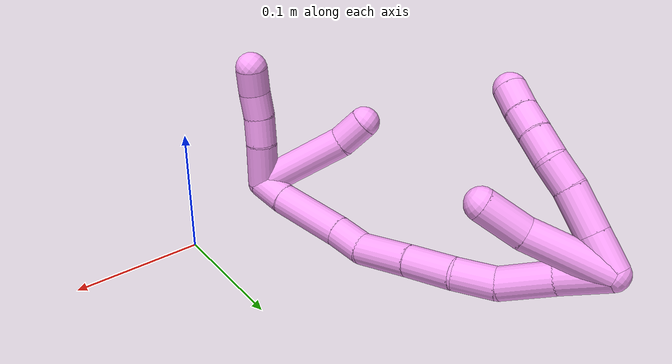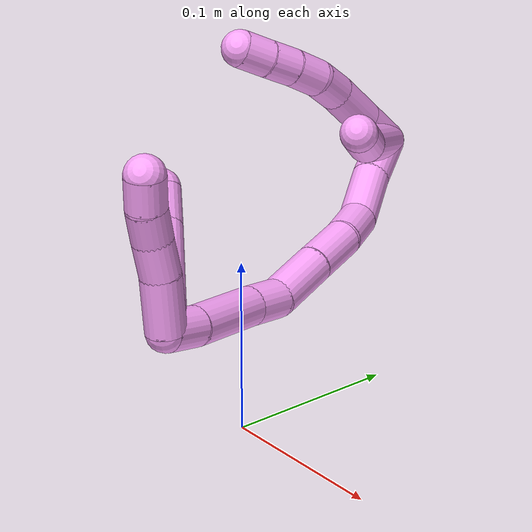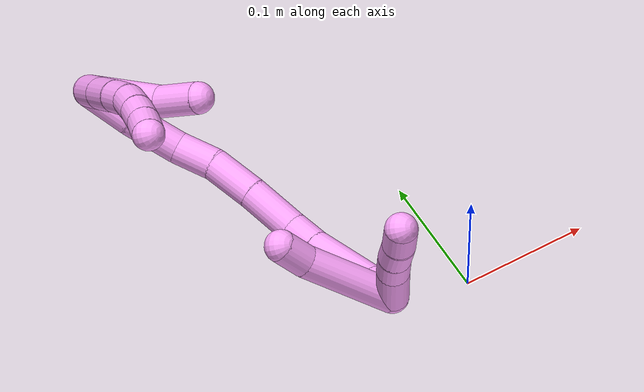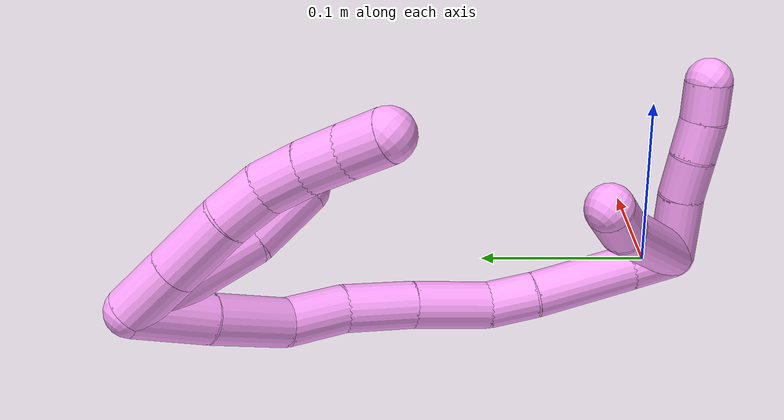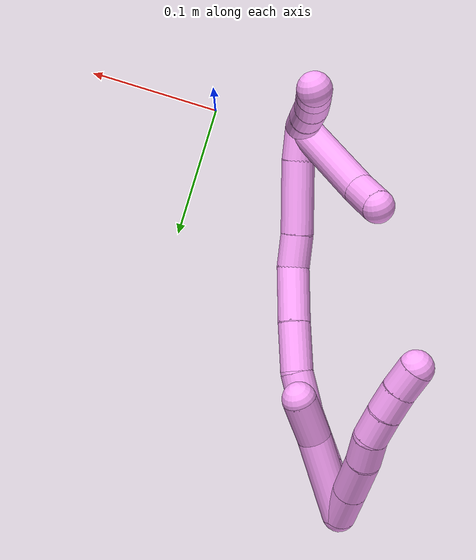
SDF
<sdf version="1.7">
 <world name="default">
  <model name="4">
   <static>0</static>
   <link name="4">
    <collision name="collision-cylinder-e_1_2_8">
     <pose>0.005454 -0.005043 -0.012886 2.76856 0.375442 1.5774</pose>
     <geometry><cylinder><radius>0.0125</radius><length>0.029748</length></cylinder></geometry>
     <surface>
      <friction><ode><mu>1.16</mu><mu2>1.16</mu2><slip1>0</slip1><slip2>0</slip2></ode></friction>
      <contact><ode><kp>1e+06</kp><kd>1</kd><max_vel>0</max_vel><min_depth>0.001</min_depth></ode></contact>
     </surface>
    </collision>
    <visual name="visual-cylinder-e_1_2_8">
     <pose>0.005454 -0.005043 -0.012886 2.76856 0.375442 1.5774</pose>
     <geometry><cylinder><radius>0.0125</radius><length>0.029748</length></cylinder></geometry>
     <material><ambient>1 0.65098 0.996078 1</ambient></material>
    </visual>
    <collision name="collision-cylinder-e_2_8_9">
     <pose>0.017181 -0.015887 -0.0408 2.77322 0.371372 1.57908</pose>
     <geometry><cylinder><radius>0.0125</radius><length>0.034573</length></cylinder></geometry>
     <surface>
      <friction><ode><mu>1.16</mu><mu2>1.16</mu2><slip1>0</slip1><slip2>0</slip2></ode></friction>
      <contact><ode><kp>1e+06</kp><kd>1</kd><max_vel>0</max_vel><min_depth>0.001</min_depth></ode></contact>
     </surface>
    </collision>
    <visual name="visual-cylinder-e_2_8_9">
     <pose>0.017181 -0.015887 -0.0408 2.77322 0.371372 1.57908</pose>
     <geometry><cylinder><radius>0.0125</radius><length>0.034573</length></cylinder></geometry>
     <material><ambient>1 0.65098 0.996078 1</ambient></material>
    </visual>
    <collision name="collision-cylinder-e_3_9_10">
     <pose>0.026215 -0.025762 -0.066169 2.76624 0.243426 1.1444</pose>
     <geometry><cylinder><radius>0.0125</radius><length>0.022905</length></cylinder></geometry>
     <surface>
      <friction><ode><mu>1.16</mu><mu2>1.16</mu2><slip1>0</slip1><slip2>0</slip2></ode></friction>
      <contact><ode><kp>1e+06</kp><kd>1</kd><max_vel>0</max_vel><min_depth>0.001</min_depth></ode></contact>
     </surface>
    </collision>
    <visual name="visual-cylinder-e_3_9_10">
     <pose>0.026215 -0.025762 -0.066169 2.76624 0.243426 1.1444</pose>
     <geometry><cylinder><radius>0.0125</radius><length>0.022905</length></cylinder></geometry>
     <material><ambient>1 0.65098 0.996078 1</ambient></material>
    </visual>
    <collision name="collision-cylinder-e_4_10_11">
     <pose>0.031856 -0.036256 -0.084937 2.49062 0.265475 0.753471</pose>
     <geometry><cylinder><radius>0.0125</radius><length>0.021957</length></cylinder></geometry>
     <surface>
      <friction><ode><mu>1.16</mu><mu2>1.16</mu2><slip1>0</slip1><slip2>0</slip2></ode></friction>
      <contact><ode><kp>1e+06</kp><kd>1</kd><max_vel>0</max_vel><min_depth>0.001</min_depth></ode></contact>
     </surface>
    </collision>
    <visual name="visual-cylinder-e_4_10_11">
     <pose>0.031856 -0.036256 -0.084937 2.49062 0.265475 0.753471</pose>
     <geometry><cylinder><radius>0.0125</radius><length>0.021957</length></cylinder></geometry>
     <material><ambient>1 0.65098 0.996078 1</ambient></material>
    </visual>
    <collision name="collision-cylinder-e_5_11_12">
     <pose>0.037274 -0.049311 -0.100674 2.4045 0.251673 0.633111</pose>
     <geometry><cylinder><radius>0.0125</radius><length>0.020385</length></cylinder></geometry>
     <surface>
      <friction><ode><mu>1.16</mu><mu2>1.16</mu2><slip1>0</slip1><slip2>0</slip2></ode></friction>
      <contact><ode><kp>1e+06</kp><kd>1</kd><max_vel>0</max_vel><min_depth>0.001</min_depth></ode></contact>
     </surface>
    </collision>
    <visual name="visual-cylinder-e_5_11_12">
     <pose>0.037274 -0.049311 -0.100674 2.4045 0.251673 0.633111</pose>
     <geometry><cylinder><radius>0.0125</radius><length>0.020385</length></cylinder></geometry>
     <material><ambient>1 0.65098 0.996078 1</ambient></material>
    </visual>
    <collision name="collision-cylinder-e_6_12_6">
     <pose>0.042908 -0.062864 -0.114833 2.3512 0.30785 0.712168</pose>
     <geometry><cylinder><radius>0.0125</radius><length>0.020431</length></cylinder></geometry>
     <surface>
      <friction><ode><mu>1.16</mu><mu2>1.16</mu2><slip1>0</slip1><slip2>0</slip2></ode></friction>
      <contact><ode><kp>1e+06</kp><kd>1</kd><max_vel>0</max_vel><min_depth>0.001</min_depth></ode></contact>
     </surface>
    </collision>
    <visual name="visual-cylinder-e_6_12_6">
     <pose>0.042908 -0.062864 -0.114833 2.3512 0.30785 0.712168</pose>
     <geometry><cylinder><radius>0.0125</radius><length>0.020431</length></cylinder></geometry>
     <material><ambient>1 0.65098 0.996078 1</ambient></material>
    </visual>
    <collision name="collision-cylinder-e_1_2_13">
     <pose>-0.009434 -0.005364 -0.030427 2.96709 -0.296364 -2.08151</pose>
     <geometry><cylinder><radius>0.0125</radius><length>0.064609</length></cylinder></geometry>
     <surface>
      <friction><ode><mu>1.16</mu><mu2>1.16</mu2><slip1>0</slip1><slip2>0</slip2></ode></friction>
      <contact><ode><kp>1e+06</kp><kd>1</kd><max_vel>0</max_vel><min_depth>0.001</min_depth></ode></contact>
     </surface>
    </collision>
    <visual name="visual-cylinder-e_1_2_13">
     <pose>-0.009434 -0.005364 -0.030427 2.96709 -0.296364 -2.08151</pose>
     <geometry><cylinder><radius>0.0125</radius><length>0.064609</length></cylinder></geometry>
     <material><ambient>1 0.65098 0.996078 1</ambient></material>
    </visual>
    <collision name="collision-cylinder-e_2_13_5">
     <pose>-0.020703 -0.011191 -0.078448 3.11526 -0.103843 -2.64523</pose>
     <geometry><cylinder><radius>0.0125</radius><length>0.035391</length></cylinder></geometry>
     <surface>
      <friction><ode><mu>1.16</mu><mu2>1.16</mu2><slip1>0</slip1><slip2>0</slip2></ode></friction>
      <contact><ode><kp>1e+06</kp><kd>1</kd><max_vel>0</max_vel><min_depth>0.001</min_depth></ode></contact>
     </surface>
    </collision>
    <visual name="visual-cylinder-e_2_13_5">
     <pose>-0.020703 -0.011191 -0.078448 3.11526 -0.103843 -2.64523</pose>
     <geometry><cylinder><radius>0.0125</radius><length>0.035391</length></cylinder></geometry>
     <material><ambient>1 0.65098 0.996078 1</ambient></material>
    </visual>
    <collision name="collision-cylinder-e_1_2_14">
     <pose>-0.014428 -0.00792 -0.009976 2.4706 -0.847564 -1.82557</pose>
     <geometry><cylinder><radius>0.0125</radius><length>0.038493</length></cylinder></geometry>
     <surface>
      <friction><ode><mu>1.16</mu><mu2>1.16</mu2><slip1>0</slip1><slip2>0</slip2></ode></friction>
      <contact><ode><kp>1e+06</kp><kd>1</kd><max_vel>0</max_vel><min_depth>0.001</min_depth></ode></contact>
     </surface>
    </collision>
    <visual name="visual-cylinder-e_1_2_14">
     <pose>-0.014428 -0.00792 -0.009976 2.4706 -0.847564 -1.82557</pose>
     <geometry><cylinder><radius>0.0125</radius><length>0.038493</length></cylinder></geometry>
     <material><ambient>1 0.65098 0.996078 1</ambient></material>
    </visual>
    <collision name="collision-cylinder-e_2_14_15">
     <pose>-0.045105 -0.02292 -0.031213 2.58029 -0.884791 -2.04828</pose>
     <geometry><cylinder><radius>0.0125</radius><length>0.041998</length></cylinder></geometry>
     <surface>
      <friction><ode><mu>1.16</mu><mu2>1.16</mu2><slip1>0</slip1><slip2>0</slip2></ode></friction>
      <contact><ode><kp>1e+06</kp><kd>1</kd><max_vel>0</max_vel><min_depth>0.001</min_depth></ode></contact>
     </surface>
    </collision>
    <visual name="visual-cylinder-e_2_14_15">
     <pose>-0.045105 -0.02292 -0.031213 2.58029 -0.884791 -2.04828</pose>
     <geometry><cylinder><radius>0.0125</radius><length>0.041998</length></cylinder></geometry>
     <material><ambient>1 0.65098 0.996078 1</ambient></material>
    </visual>
    <collision name="collision-cylinder-e_3_15_16">
     <pose>-0.06977 -0.035501 -0.054857 2.72358 -0.555801 -1.86296</pose>
     <geometry><cylinder><radius>0.0125</radius><length>0.031903</length></cylinder></geometry>
     <surface>
      <friction><ode><mu>1.16</mu><mu2>1.16</mu2><slip1>0</slip1><slip2>0</slip2></ode></friction>
      <contact><ode><kp>1e+06</kp><kd>1</kd><max_vel>0</max_vel><min_depth>0.001</min_depth></ode></contact>
     </surface>
    </collision>
    <visual name="visual-cylinder-e_3_15_16">
     <pose>-0.06977 -0.035501 -0.054857 2.72358 -0.555801 -1.86296</pose>
     <geometry><cylinder><radius>0.0125</radius><length>0.031903</length></cylinder></geometry>
     <material><ambient>1 0.65098 0.996078 1</ambient></material>
    </visual>
    <collision name="collision-cylinder-e_4_16_17">
     <pose>-0.087592 -0.051007 -0.080079 2.47956 -0.523943 -1.32514</pose>
     <geometry><cylinder><radius>0.0125</radius><length>0.037597</length></cylinder></geometry>
     <surface>
      <friction><ode><mu>1.16</mu><mu2>1.16</mu2><slip1>0</slip1><slip2>0</slip2></ode></friction>
      <contact><ode><kp>1e+06</kp><kd>1</kd><max_vel>0</max_vel><min_depth>0.001</min_depth></ode></contact>
     </surface>
    </collision>
    <visual name="visual-cylinder-e_4_16_17">
     <pose>-0.087592 -0.051007 -0.080079 2.47956 -0.523943 -1.32514</pose>
     <geometry><cylinder><radius>0.0125</radius><length>0.037597</length></cylinder></geometry>
     <material><ambient>1 0.65098 0.996078 1</ambient></material>
    </visual>
    <collision name="collision-cylinder-e_5_17_18">
     <pose>-0.107949 -0.073133 -0.106529 2.41408 -0.541117 -1.25927</pose>
     <geometry><cylinder><radius>0.0125</radius><length>0.042527</length></cylinder></geometry>
     <surface>
      <friction><ode><mu>1.16</mu><mu2>1.16</mu2><slip1>0</slip1><slip2>0</slip2></ode></friction>
      <contact><ode><kp>1e+06</kp><kd>1</kd><max_vel>0</max_vel><min_depth>0.001</min_depth></ode></contact>
     </surface>
    </collision>
    <visual name="visual-cylinder-e_5_17_18">
     <pose>-0.107949 -0.073133 -0.106529 2.41408 -0.541117 -1.25927</pose>
     <geometry><cylinder><radius>0.0125</radius><length>0.042527</length></cylinder></geometry>
     <material><ambient>1 0.65098 0.996078 1</ambient></material>
    </visual>
    <collision name="collision-cylinder-e_6_18_19">
     <pose>-0.12173 -0.092801 -0.130395 2.50709 -0.218532 -0.644904</pose>
     <geometry><cylinder><radius>0.0125</radius><length>0.026086</length></cylinder></geometry>
     <surface>
      <friction><ode><mu>1.16</mu><mu2>1.16</mu2><slip1>0</slip1><slip2>0</slip2></ode></friction>
      <contact><ode><kp>1e+06</kp><kd>1</kd><max_vel>0</max_vel><min_depth>0.001</min_depth></ode></contact>
     </surface>
    </collision>
    <visual name="visual-cylinder-e_6_18_19">
     <pose>-0.12173 -0.092801 -0.130395 2.50709 -0.218532 -0.644904</pose>
     <geometry><cylinder><radius>0.0125</radius><length>0.026086</length></cylinder></geometry>
     <material><ambient>1 0.65098 0.996078 1</ambient></material>
    </visual>
    <collision name="collision-cylinder-e_7_19_20">
     <pose>-0.132073 -0.114242 -0.163852 2.60209 -0.271073 -0.916427</pose>
     <geometry><cylinder><radius>0.0125</radius><length>0.056137</length></cylinder></geometry>
     <surface>
      <friction><ode><mu>1.16</mu><mu2>1.16</mu2><slip1>0</slip1><slip2>0</slip2></ode></friction>
      <contact><ode><kp>1e+06</kp><kd>1</kd><max_vel>0</max_vel><min_depth>0.001</min_depth></ode></contact>
     </surface>
    </collision>
    <visual name="visual-cylinder-e_7_19_20">
     <pose>-0.132073 -0.114242 -0.163852 2.60209 -0.271073 -0.916427</pose>
     <geometry><cylinder><radius>0.0125</radius><length>0.056137</length></cylinder></geometry>
     <material><ambient>1 0.65098 0.996078 1</ambient></material>
    </visual>
    <collision name="collision-cylinder-e_8_20_1">
     <pose>-0.141619 -0.134979 -0.197473 2.56033 -0.161411 -0.528193</pose>
     <geometry><cylinder><radius>0.0125</radius><length>0.025259</length></cylinder></geometry>
     <surface>
      <friction><ode><mu>1.16</mu><mu2>1.16</mu2><slip1>0</slip1><slip2>0</slip2></ode></friction>
      <contact><ode><kp>1e+06</kp><kd>1</kd><max_vel>0</max_vel><min_depth>0.001</min_depth></ode></contact>
     </surface>
    </collision>
    <visual name="visual-cylinder-e_8_20_1">
     <pose>-0.141619 -0.134979 -0.197473 2.56033 -0.161411 -0.528193</pose>
     <geometry><cylinder><radius>0.0125</radius><length>0.025259</length></cylinder></geometry>
     <material><ambient>1 0.65098 0.996078 1</ambient></material>
    </visual>
    <collision name="collision-cylinder-e_1_1_21">
     <pose>-0.130134 -0.137726 -0.219123 -2.79185 0.846494 -2.39406</pose>
     <geometry><cylinder><radius>0.0125</radius><length>0.036087</length></cylinder></geometry>
     <surface>
      <friction><ode><mu>1.16</mu><mu2>1.16</mu2><slip1>0</slip1><slip2>0</slip2></ode></friction>
      <contact><ode><kp>1e+06</kp><kd>1</kd><max_vel>0</max_vel><min_depth>0.001</min_depth></ode></contact>
     </surface>
    </collision>
    <visual name="visual-cylinder-e_1_1_21">
     <pose>-0.130134 -0.137726 -0.219123 -2.79185 0.846494 -2.39406</pose>
     <geometry><cylinder><radius>0.0125</radius><length>0.036087</length></cylinder></geometry>
     <material><ambient>1 0.65098 0.996078 1</ambient></material>
    </visual>
    <collision name="collision-cylinder-e_2_21_22">
     <pose>-0.108285 -0.132259 -0.238031 -2.96488 0.818766 -2.73879</pose>
     <geometry><cylinder><radius>0.0125</radius><length>0.022828</length></cylinder></geometry>
     <surface>
      <friction><ode><mu>1.16</mu><mu2>1.16</mu2><slip1>0</slip1><slip2>0</slip2></ode></friction>
      <contact><ode><kp>1e+06</kp><kd>1</kd><max_vel>0</max_vel><min_depth>0.001</min_depth></ode></contact>
     </surface>
    </collision>
    <visual name="visual-cylinder-e_2_21_22">
     <pose>-0.108285 -0.132259 -0.238031 -2.96488 0.818766 -2.73879</pose>
     <geometry><cylinder><radius>0.0125</radius><length>0.022828</length></cylinder></geometry>
     <material><ambient>1 0.65098 0.996078 1</ambient></material>
    </visual>
    <collision name="collision-cylinder-e_3_22_23">
     <pose>-0.093174 -0.12928 -0.253314 -2.93331 0.716734 -2.59732</pose>
     <geometry><cylinder><radius>0.0125</radius><length>0.020625</length></cylinder></geometry>
     <surface>
      <friction><ode><mu>1.16</mu><mu2>1.16</mu2><slip1>0</slip1><slip2>0</slip2></ode></friction>
      <contact><ode><kp>1e+06</kp><kd>1</kd><max_vel>0</max_vel><min_depth>0.001</min_depth></ode></contact>
     </surface>
    </collision>
    <visual name="visual-cylinder-e_3_22_23">
     <pose>-0.093174 -0.12928 -0.253314 -2.93331 0.716734 -2.59732</pose>
     <geometry><cylinder><radius>0.0125</radius><length>0.020625</length></cylinder></geometry>
     <material><ambient>1 0.65098 0.996078 1</ambient></material>
    </visual>
    <collision name="collision-cylinder-e_4_23_4">
     <pose>-0.079263 -0.124812 -0.267668 -2.74059 0.772183 -2.21435</pose>
     <geometry><cylinder><radius>0.0125</radius><length>0.020459</length></cylinder></geometry>
     <surface>
      <friction><ode><mu>1.16</mu><mu2>1.16</mu2><slip1>0</slip1><slip2>0</slip2></ode></friction>
      <contact><ode><kp>1e+06</kp><kd>1</kd><max_vel>0</max_vel><min_depth>0.001</min_depth></ode></contact>
     </surface>
    </collision>
    <visual name="visual-cylinder-e_4_23_4">
     <pose>-0.079263 -0.124812 -0.267668 -2.74059 0.772183 -2.21435</pose>
     <geometry><cylinder><radius>0.0125</radius><length>0.020459</length></cylinder></geometry>
     <material><ambient>1 0.65098 0.996078 1</ambient></material>
    </visual>
    <collision name="collision-cylinder-e_1_1_24">
     <pose>-0.108662 -0.138182 -0.194712 -0.269592 1.19825 -0.184687</pose>
     <geometry><cylinder><radius>0.0125</radius><length>0.075126</length></cylinder></geometry>
     <surface>
      <friction><ode><mu>1.16</mu><mu2>1.16</mu2><slip1>0</slip1><slip2>0</slip2></ode></friction>
      <contact><ode><kp>1e+06</kp><kd>1</kd><max_vel>0</max_vel><min_depth>0.001</min_depth></ode></contact>
     </surface>
    </collision>
    <visual name="visual-cylinder-e_1_1_24">
     <pose>-0.108662 -0.138182 -0.194712 -0.269592 1.19825 -0.184687</pose>
     <geometry><cylinder><radius>0.0125</radius><length>0.075126</length></cylinder></geometry>
     <material><ambient>1 0.65098 0.996078 1</ambient></material>
    </visual>
    <collision name="collision-cylinder-e_2_24_3">
     <pose>-0.061461 -0.13273 -0.180046 -0.882951 1.38134 -0.744707</pose>
     <geometry><cylinder><radius>0.0125</radius><length>0.024874</length></cylinder></geometry>
     <surface>
      <friction><ode><mu>1.16</mu><mu2>1.16</mu2><slip1>0</slip1><slip2>0</slip2></ode></friction>
      <contact><ode><kp>1e+06</kp><kd>1</kd><max_vel>0</max_vel><min_depth>0.001</min_depth></ode></contact>
     </surface>
    </collision>
    <visual name="visual-cylinder-e_2_24_3">
     <pose>-0.061461 -0.13273 -0.180046 -0.882951 1.38134 -0.744707</pose>
     <geometry><cylinder><radius>0.0125</radius><length>0.024874</length></cylinder></geometry>
     <material><ambient>1 0.65098 0.996078 1</ambient></material>
    </visual>
    <collision name="collision-sphere-3">
     <pose>-0.049247 -0.130921 -0.178559 0 -0 0</pose>
     <geometry><sphere><radius>0.0125</radius></sphere></geometry>
     <surface>
      <friction><ode><mu>1.16</mu><mu2>1.16</mu2><slip1>0</slip1><slip2>0</slip2></ode></friction>
      <contact><ode><kp>1e+06</kp><kd>1</kd><max_vel>0</max_vel><min_depth>0.001</min_depth></ode></contact>
     </surface>
    </collision>
    <visual name="visual-sphere-3">
     <pose>-0.049247 -0.130921 -0.178559 0 -0 0</pose>
     <geometry><sphere><radius>0.0125</radius></sphere></geometry>
     <material><ambient>1 0.65098 0.996078 1</ambient></material>
    </visual>
    <collision name="collision-sphere-24">
     <pose>-0.073676 -0.13454 -0.181533 0 -0 0</pose>
     <geometry><sphere><radius>0.0125</radius></sphere></geometry>
     <surface>
      <friction><ode><mu>1.16</mu><mu2>1.16</mu2><slip1>0</slip1><slip2>0</slip2></ode></friction>
      <contact><ode><kp>1e+06</kp><kd>1</kd><max_vel>0</max_vel><min_depth>0.001</min_depth></ode></contact>
     </surface>
    </collision>
    <visual name="visual-sphere-24">
     <pose>-0.073676 -0.13454 -0.181533 0 -0 0</pose>
     <geometry><sphere><radius>0.0125</radius></sphere></geometry>
     <material><ambient>1 0.65098 0.996078 1</ambient></material>
    </visual>
    <collision name="collision-sphere-4">
     <pose>-0.072125 -0.121951 -0.274415 0 -0 0</pose>
     <geometry><sphere><radius>0.0125</radius></sphere></geometry>
     <surface>
      <friction><ode><mu>1.16</mu><mu2>1.16</mu2><slip1>0</slip1><slip2>0</slip2></ode></friction>
      <contact><ode><kp>1e+06</kp><kd>1</kd><max_vel>0</max_vel><min_depth>0.001</min_depth></ode></contact>
     </surface>
    </collision>
    <visual name="visual-sphere-4">
     <pose>-0.072125 -0.121951 -0.274415 0 -0 0</pose>
     <geometry><sphere><radius>0.0125</radius></sphere></geometry>
     <material><ambient>1 0.65098 0.996078 1</ambient></material>
    </visual>
    <collision name="collision-sphere-23">
     <pose>-0.0864 -0.127673 -0.260921 0 -0 0</pose>
     <geometry><sphere><radius>0.0125</radius></sphere></geometry>
     <surface>
      <friction><ode><mu>1.16</mu><mu2>1.16</mu2><slip1>0</slip1><slip2>0</slip2></ode></friction>
      <contact><ode><kp>1e+06</kp><kd>1</kd><max_vel>0</max_vel><min_depth>0.001</min_depth></ode></contact>
     </surface>
    </collision>
    <visual name="visual-sphere-23">
     <pose>-0.0864 -0.127673 -0.260921 0 -0 0</pose>
     <geometry><sphere><radius>0.0125</radius></sphere></geometry>
     <material><ambient>1 0.65098 0.996078 1</ambient></material>
    </visual>
    <collision name="collision-sphere-22">
     <pose>-0.099949 -0.130888 -0.245707 0 -0 0</pose>
     <geometry><sphere><radius>0.0125</radius></sphere></geometry>
     <surface>
      <friction><ode><mu>1.16</mu><mu2>1.16</mu2><slip1>0</slip1><slip2>0</slip2></ode></friction>
      <contact><ode><kp>1e+06</kp><kd>1</kd><max_vel>0</max_vel><min_depth>0.001</min_depth></ode></contact>
     </surface>
    </collision>
    <visual name="visual-sphere-22">
     <pose>-0.099949 -0.130888 -0.245707 0 -0 0</pose>
     <geometry><sphere><radius>0.0125</radius></sphere></geometry>
     <material><ambient>1 0.65098 0.996078 1</ambient></material>
    </visual>
    <collision name="collision-sphere-21">
     <pose>-0.11662 -0.13363 -0.230355 0 -0 0</pose>
     <geometry><sphere><radius>0.0125</radius></sphere></geometry>
     <surface>
      <friction><ode><mu>1.16</mu><mu2>1.16</mu2><slip1>0</slip1><slip2>0</slip2></ode></friction>
      <contact><ode><kp>1e+06</kp><kd>1</kd><max_vel>0</max_vel><min_depth>0.001</min_depth></ode></contact>
     </surface>
    </collision>
    <visual name="visual-sphere-21">
     <pose>-0.11662 -0.13363 -0.230355 0 -0 0</pose>
     <geometry><sphere><radius>0.0125</radius></sphere></geometry>
     <material><ambient>1 0.65098 0.996078 1</ambient></material>
    </visual>
    <collision name="collision-sphere-1">
     <pose>-0.143649 -0.141823 -0.207891 0 -0 0</pose>
     <geometry><sphere><radius>0.0125</radius></sphere></geometry>
     <surface>
      <friction><ode><mu>1.16</mu><mu2>1.16</mu2><slip1>0</slip1><slip2>0</slip2></ode></friction>
      <contact><ode><kp>1e+06</kp><kd>1</kd><max_vel>0</max_vel><min_depth>0.001</min_depth></ode></contact>
     </surface>
    </collision>
    <visual name="visual-sphere-1">
     <pose>-0.143649 -0.141823 -0.207891 0 -0 0</pose>
     <geometry><sphere><radius>0.0125</radius></sphere></geometry>
     <material><ambient>1 0.65098 0.996078 1</ambient></material>
    </visual>
    <collision name="collision-sphere-12">
     <pose>0.039813 -0.055946 -0.107983 0 -0 0</pose>
     <geometry><sphere><radius>0.0125</radius></sphere></geometry>
     <surface>
      <friction><ode><mu>1.16</mu><mu2>1.16</mu2><slip1>0</slip1><slip2>0</slip2></ode></friction>
      <contact><ode><kp>1e+06</kp><kd>1</kd><max_vel>0</max_vel><min_depth>0.001</min_depth></ode></contact>
     </surface>
    </collision>
    <visual name="visual-sphere-12">
     <pose>0.039813 -0.055946 -0.107983 0 -0 0</pose>
     <geometry><sphere><radius>0.0125</radius></sphere></geometry>
     <material><ambient>1 0.65098 0.996078 1</ambient></material>
    </visual>
    <collision name="collision-sphere-11">
     <pose>0.034736 -0.042676 -0.093365 0 -0 0</pose>
     <geometry><sphere><radius>0.0125</radius></sphere></geometry>
     <surface>
      <friction><ode><mu>1.16</mu><mu2>1.16</mu2><slip1>0</slip1><slip2>0</slip2></ode></friction>
      <contact><ode><kp>1e+06</kp><kd>1</kd><max_vel>0</max_vel><min_depth>0.001</min_depth></ode></contact>
     </surface>
    </collision>
    <visual name="visual-sphere-11">
     <pose>0.034736 -0.042676 -0.093365 0 -0 0</pose>
     <geometry><sphere><radius>0.0125</radius></sphere></geometry>
     <material><ambient>1 0.65098 0.996078 1</ambient></material>
    </visual>
    <collision name="collision-sphere-10">
     <pose>0.028975 -0.029837 -0.07651 0 -0 0</pose>
     <geometry><sphere><radius>0.0125</radius></sphere></geometry>
     <surface>
      <friction><ode><mu>1.16</mu><mu2>1.16</mu2><slip1>0</slip1><slip2>0</slip2></ode></friction>
      <contact><ode><kp>1e+06</kp><kd>1</kd><max_vel>0</max_vel><min_depth>0.001</min_depth></ode></contact>
     </surface>
    </collision>
    <visual name="visual-sphere-10">
     <pose>0.028975 -0.029837 -0.07651 0 -0 0</pose>
     <geometry><sphere><radius>0.0125</radius></sphere></geometry>
     <material><ambient>1 0.65098 0.996078 1</ambient></material>
    </visual>
    <collision name="collision-sphere-9">
     <pose>0.023455 -0.021687 -0.055828 0 -0 0</pose>
     <geometry><sphere><radius>0.0125</radius></sphere></geometry>
     <surface>
      <friction><ode><mu>1.16</mu><mu2>1.16</mu2><slip1>0</slip1><slip2>0</slip2></ode></friction>
      <contact><ode><kp>1e+06</kp><kd>1</kd><max_vel>0</max_vel><min_depth>0.001</min_depth></ode></contact>
     </surface>
    </collision>
    <visual name="visual-sphere-9">
     <pose>0.023455 -0.021687 -0.055828 0 -0 0</pose>
     <geometry><sphere><radius>0.0125</radius></sphere></geometry>
     <material><ambient>1 0.65098 0.996078 1</ambient></material>
    </visual>
    <collision name="collision-sphere-2">
     <geometry><sphere><radius>0.0125</radius></sphere></geometry>
     <surface>
      <friction><ode><mu>1.16</mu><mu2>1.16</mu2><slip1>0</slip1><slip2>0</slip2></ode></friction>
      <contact><ode><kp>1e+06</kp><kd>1</kd><max_vel>0</max_vel><min_depth>0.001</min_depth></ode></contact>
     </surface>
    </collision>
    <visual name="visual-sphere-2">
     <geometry><sphere><radius>0.0125</radius></sphere></geometry>
     <material><ambient>1 0.65098 0.996078 1</ambient></material>
    </visual>
    <collision name="collision-sphere-19">
     <pose>-0.124558 -0.100349 -0.14065 0 -0 0</pose>
     <geometry><sphere><radius>0.0125</radius></sphere></geometry>
     <surface>
      <friction><ode><mu>1.16</mu><mu2>1.16</mu2><slip1>0</slip1><slip2>0</slip2></ode></friction>
      <contact><ode><kp>1e+06</kp><kd>1</kd><max_vel>0</max_vel><min_depth>0.001</min_depth></ode></contact>
     </surface>
    </collision>
    <visual name="visual-sphere-19">
     <pose>-0.124558 -0.100349 -0.14065 0 -0 0</pose>
     <geometry><sphere><radius>0.0125</radius></sphere></geometry>
     <material><ambient>1 0.65098 0.996078 1</ambient></material>
    </visual>
    <collision name="collision-sphere-8">
     <pose>0.010908 -0.010086 -0.025773 0 -0 0</pose>
     <geometry><sphere><radius>0.0125</radius></sphere></geometry>
     <surface>
      <friction><ode><mu>1.16</mu><mu2>1.16</mu2><slip1>0</slip1><slip2>0</slip2></ode></friction>
      <contact><ode><kp>1e+06</kp><kd>1</kd><max_vel>0</max_vel><min_depth>0.001</min_depth></ode></contact>
     </surface>
    </collision>
    <visual name="visual-sphere-8">
     <pose>0.010908 -0.010086 -0.025773 0 -0 0</pose>
     <geometry><sphere><radius>0.0125</radius></sphere></geometry>
     <material><ambient>1 0.65098 0.996078 1</ambient></material>
    </visual>
    <collision name="collision-sphere-6">
     <pose>0.046003 -0.069782 -0.121682 0 -0 0</pose>
     <geometry><sphere><radius>0.0125</radius></sphere></geometry>
     <surface>
      <friction><ode><mu>1.16</mu><mu2>1.16</mu2><slip1>0</slip1><slip2>0</slip2></ode></friction>
      <contact><ode><kp>1e+06</kp><kd>1</kd><max_vel>0</max_vel><min_depth>0.001</min_depth></ode></contact>
     </surface>
    </collision>
    <visual name="visual-sphere-6">
     <pose>0.046003 -0.069782 -0.121682 0 -0 0</pose>
     <geometry><sphere><radius>0.0125</radius></sphere></geometry>
     <material><ambient>1 0.65098 0.996078 1</ambient></material>
    </visual>
    <collision name="collision-sphere-13">
     <pose>-0.018869 -0.010728 -0.060854 0 -0 0</pose>
     <geometry><sphere><radius>0.0125</radius></sphere></geometry>
     <surface>
      <friction><ode><mu>1.16</mu><mu2>1.16</mu2><slip1>0</slip1><slip2>0</slip2></ode></friction>
      <contact><ode><kp>1e+06</kp><kd>1</kd><max_vel>0</max_vel><min_depth>0.001</min_depth></ode></contact>
     </surface>
    </collision>
    <visual name="visual-sphere-13">
     <pose>-0.018869 -0.010728 -0.060854 0 -0 0</pose>
     <geometry><sphere><radius>0.0125</radius></sphere></geometry>
     <material><ambient>1 0.65098 0.996078 1</ambient></material>
    </visual>
    <collision name="collision-sphere-5">
     <pose>-0.022537 -0.011655 -0.096042 0 -0 0</pose>
     <geometry><sphere><radius>0.0125</radius></sphere></geometry>
     <surface>
      <friction><ode><mu>1.16</mu><mu2>1.16</mu2><slip1>0</slip1><slip2>0</slip2></ode></friction>
      <contact><ode><kp>1e+06</kp><kd>1</kd><max_vel>0</max_vel><min_depth>0.001</min_depth></ode></contact>
     </surface>
    </collision>
    <visual name="visual-sphere-5">
     <pose>-0.022537 -0.011655 -0.096042 0 -0 0</pose>
     <geometry><sphere><radius>0.0125</radius></sphere></geometry>
     <material><ambient>1 0.65098 0.996078 1</ambient></material>
    </visual>
    <collision name="collision-sphere-14">
     <pose>-0.028857 -0.015839 -0.019952 0 -0 0</pose>
     <geometry><sphere><radius>0.0125</radius></sphere></geometry>
     <surface>
      <friction><ode><mu>1.16</mu><mu2>1.16</mu2><slip1>0</slip1><slip2>0</slip2></ode></friction>
      <contact><ode><kp>1e+06</kp><kd>1</kd><max_vel>0</max_vel><min_depth>0.001</min_depth></ode></contact>
     </surface>
    </collision>
    <visual name="visual-sphere-14">
     <pose>-0.028857 -0.015839 -0.019952 0 -0 0</pose>
     <geometry><sphere><radius>0.0125</radius></sphere></geometry>
     <material><ambient>1 0.65098 0.996078 1</ambient></material>
    </visual>
    <collision name="collision-sphere-15">
     <pose>-0.061354 -0.03 -0.042474 0 -0 0</pose>
     <geometry><sphere><radius>0.0125</radius></sphere></geometry>
     <surface>
      <friction><ode><mu>1.16</mu><mu2>1.16</mu2><slip1>0</slip1><slip2>0</slip2></ode></friction>
      <contact><ode><kp>1e+06</kp><kd>1</kd><max_vel>0</max_vel><min_depth>0.001</min_depth></ode></contact>
     </surface>
    </collision>
    <visual name="visual-sphere-15">
     <pose>-0.061354 -0.03 -0.042474 0 -0 0</pose>
     <geometry><sphere><radius>0.0125</radius></sphere></geometry>
     <material><ambient>1 0.65098 0.996078 1</ambient></material>
    </visual>
    <collision name="collision-sphere-16">
     <pose>-0.078187 -0.041002 -0.067241 0 -0 0</pose>
     <geometry><sphere><radius>0.0125</radius></sphere></geometry>
     <surface>
      <friction><ode><mu>1.16</mu><mu2>1.16</mu2><slip1>0</slip1><slip2>0</slip2></ode></friction>
      <contact><ode><kp>1e+06</kp><kd>1</kd><max_vel>0</max_vel><min_depth>0.001</min_depth></ode></contact>
     </surface>
    </collision>
    <visual name="visual-sphere-16">
     <pose>-0.078187 -0.041002 -0.067241 0 -0 0</pose>
     <geometry><sphere><radius>0.0125</radius></sphere></geometry>
     <material><ambient>1 0.65098 0.996078 1</ambient></material>
    </visual>
    <collision name="collision-sphere-17">
     <pose>-0.096997 -0.061013 -0.092918 0 -0 0</pose>
     <geometry><sphere><radius>0.0125</radius></sphere></geometry>
     <surface>
      <friction><ode><mu>1.16</mu><mu2>1.16</mu2><slip1>0</slip1><slip2>0</slip2></ode></friction>
      <contact><ode><kp>1e+06</kp><kd>1</kd><max_vel>0</max_vel><min_depth>0.001</min_depth></ode></contact>
     </surface>
    </collision>
    <visual name="visual-sphere-17">
     <pose>-0.096997 -0.061013 -0.092918 0 -0 0</pose>
     <geometry><sphere><radius>0.0125</radius></sphere></geometry>
     <material><ambient>1 0.65098 0.996078 1</ambient></material>
    </visual>
    <collision name="collision-sphere-18">
     <pose>-0.118902 -0.085254 -0.120141 0 -0 0</pose>
     <geometry><sphere><radius>0.0125</radius></sphere></geometry>
     <surface>
      <friction><ode><mu>1.16</mu><mu2>1.16</mu2><slip1>0</slip1><slip2>0</slip2></ode></friction>
      <contact><ode><kp>1e+06</kp><kd>1</kd><max_vel>0</max_vel><min_depth>0.001</min_depth></ode></contact>
     </surface>
    </collision>
    <visual name="visual-sphere-18">
     <pose>-0.118902 -0.085254 -0.120141 0 -0 0</pose>
     <geometry><sphere><radius>0.0125</radius></sphere></geometry>
     <material><ambient>1 0.65098 0.996078 1</ambient></material>
    </visual>
    <collision name="collision-sphere-20">
     <pose>-0.139589 -0.128134 -0.187055 0 -0 0</pose>
     <geometry><sphere><radius>0.0125</radius></sphere></geometry>
     <surface>
      <friction><ode><mu>1.16</mu><mu2>1.16</mu2><slip1>0</slip1><slip2>0</slip2></ode></friction>
      <contact><ode><kp>1e+06</kp><kd>1</kd><max_vel>0</max_vel><min_depth>0.001</min_depth></ode></contact>
     </surface>
    </collision>
    <visual name="visual-sphere-20">
     <pose>-0.139589 -0.128134 -0.187055 0 -0 0</pose>
     <geometry><sphere><radius>0.0125</radius></sphere></geometry>
     <material><ambient>1 0.65098 0.996078 1</ambient></material>
    </visual>
    <inertial>
     <pose>-0.059706 -0.068908 -0.114717 0 -0 0</pose>
     <mass>0.75</mass>
     <inertia><ixx>-4.4e-05</ixx><ixy>0</ixy><ixz>0</ixz><iyy>-4e-06</iyy><iyz>0</iyz><izz>-2.3e-05</izz></inertia>
    </inertial>
   </link>
   <pose>-0.176518 0.265432 0.056269 2.69493 -0.837793 2.81017</pose>
  </model>
 </world>
</sdf>
